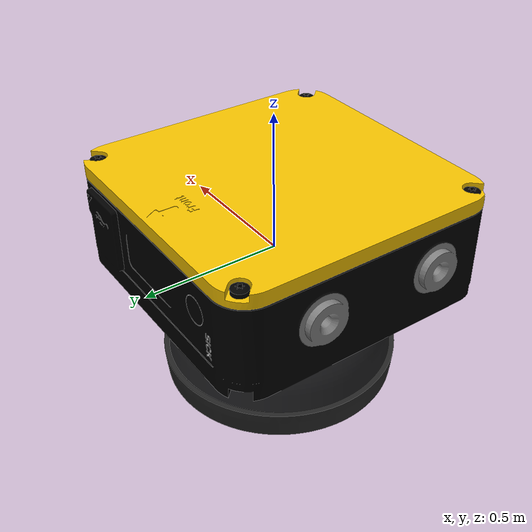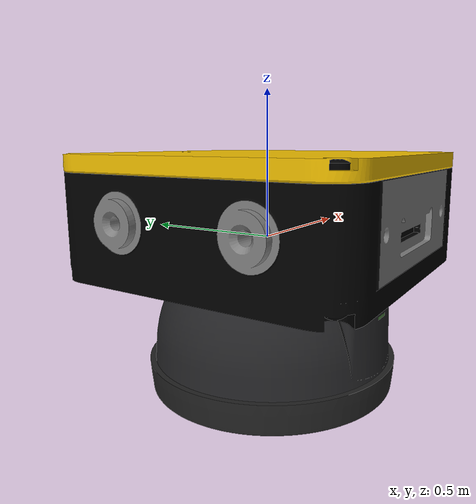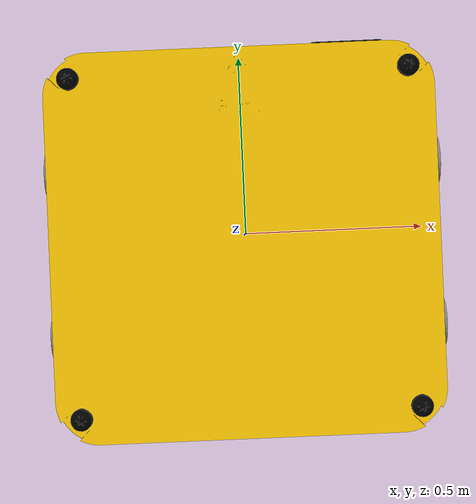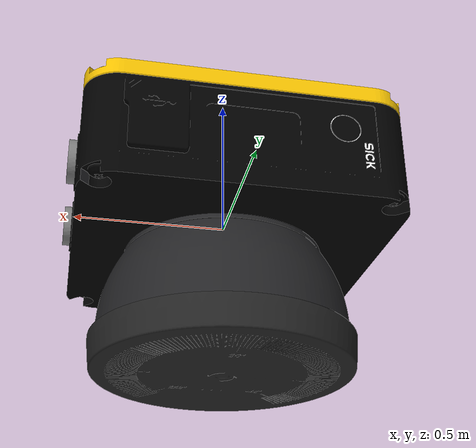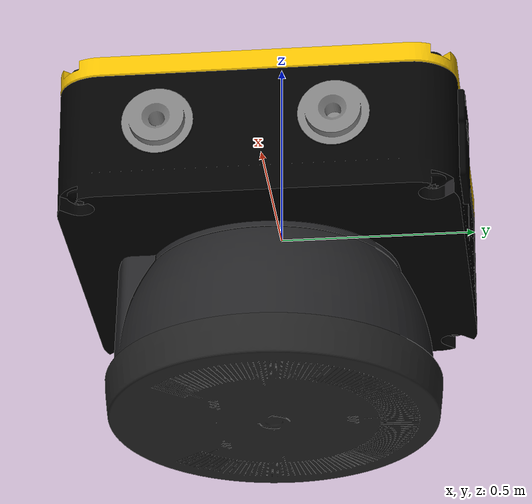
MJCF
<mujoco model="nanoscan_3">
  <default>
    <default class="visual">
      <geom group="2" type="mesh" contype="0" conaffinity="0"/>
    </default>
    <default class="collision">
      <geom group="3" type="mesh"/>
    </default>
  </default>
  <asset>
    <material name="material_nanoscan_3_0" specular="0.20000000000000004" shininess="1.0" rgba="0.00000000 0.00000000 0.00000000 1.0"/>
    <material name="material_nanoscan_3_1" specular="0.20000000000000004" shininess="1.0" rgba="0.94901961 0.75294118 0.00000000 1.0"/>
    <material name="material_nanoscan_3_2" specular="0.20000000000000004" shininess="1.0" rgba="0.50196078 0.50196078 0.50196078 1.0"/>
    <material name="material_nanoscan_3_3" specular="0.20000000000000004" shininess="1.0" rgba="1.00000000 1.00000000 1.00000000 1.0"/>
    <material name="material_nanoscan_3_4" specular="0.20000000000000004" shininess="1.0" rgba="0.14509804 0.14117647 0.15294118 1.0"/>
    <material name="material_nanoscan_3_5" specular="0.20000000000000004" shininess="1.0" rgba="0.14117647 0.14117647 0.14901961 1.0"/>
    <material name="material_nanoscan_3_6" specular="0.20000000000000004" shininess="1.0" rgba="0.30196078 0.52156863 0.25098039 1.0"/>
    <material name="material_nanoscan_3_7" specular="0.20000000000000004" shininess="1.0" rgba="0.14117647 0.14117647 0.14117647 1.0"/>
    <material name="material_nanoscan_3_8" specular="0.20000000000000004" shininess="1.0" rgba="1.00000000 0.63137255 0.60000000 1.0"/>
    <mesh file="nanoscan_3_0.obj"/>
    <mesh file="nanoscan_3_1.obj"/>
    <mesh file="nanoscan_3_2.obj"/>
    <mesh file="nanoscan_3_3.obj"/>
    <mesh file="nanoscan_3_4.obj"/>
    <mesh file="nanoscan_3_5.obj"/>
    <mesh file="nanoscan_3_6.obj"/>
    <mesh file="nanoscan_3_7.obj"/>
    <mesh file="nanoscan_3_8.obj"/>
  </asset>
  <worldbody>
    <body name="nanoscan_3">
      <geom mesh="nanoscan_3_0" material="material_nanoscan_3_8" class="visual"/>
      <geom mesh="nanoscan_3_1" material="material_nanoscan_3_7" class="visual"/>
      <geom mesh="nanoscan_3_2" material="material_nanoscan_3_6" class="visual"/>
      <geom mesh="nanoscan_3_3" material="material_nanoscan_3_5" class="visual"/>
      <geom mesh="nanoscan_3_4" material="material_nanoscan_3_4" class="visual"/>
      <geom mesh="nanoscan_3_5" material="material_nanoscan_3_3" class="visual"/>
      <geom mesh="nanoscan_3_6" material="material_nanoscan_3_2" class="visual"/>
      <geom mesh="nanoscan_3_7" material="material_nanoscan_3_1" class="visual"/>
      <geom mesh="nanoscan_3_8" material="material_nanoscan_3_0" class="visual"/>
      <geom mesh="nanoscan_3_0" class="collision"/>
      <geom mesh="nanoscan_3_1" class="collision"/>
      <geom mesh="nanoscan_3_2" class="collision"/>
      <geom mesh="nanoscan_3_3" class="collision"/>
      <geom mesh="nanoscan_3_4" class="collision"/>
      <geom mesh="nanoscan_3_5" class="collision"/>
      <geom mesh="nanoscan_3_6" class="collision"/>
      <geom mesh="nanoscan_3_7" class="collision"/>
      <geom mesh="nanoscan_3_8" class="collision"/>
    </body>
  </worldbody>
</mujoco>
